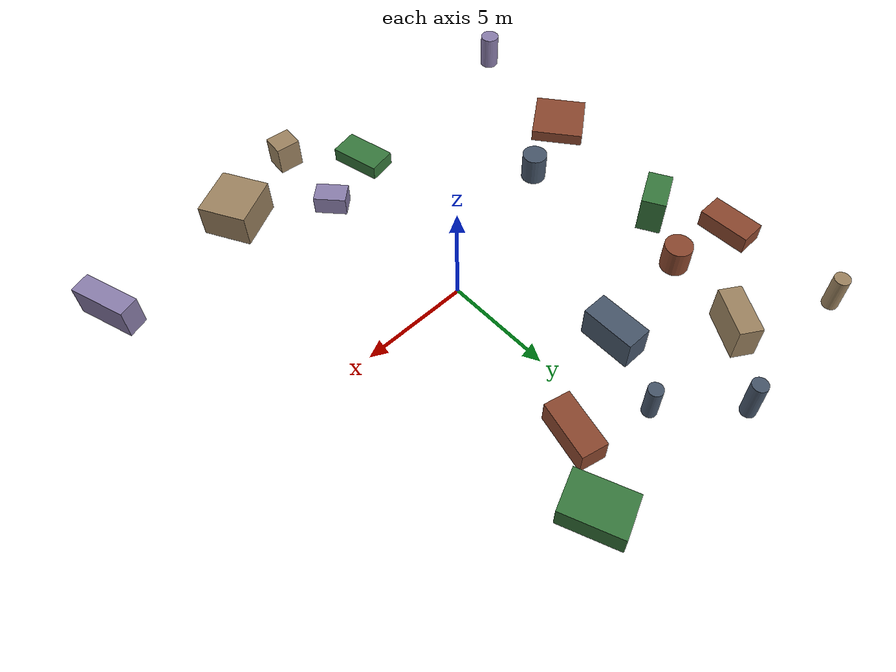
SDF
<sdf version="1.10">
 <world name="robotx_task1_uav_view">
  <gravity>0 0 -9.81</gravity>
  <physics name="physics" type="ode">
   <max_step_size>0.002</max_step_size>
   <real_time_factor>1.0</real_time_factor>
  </physics>
  <scene>
   <ambient>0.20 0.19 0.17 1.0</ambient>
   <background>0.45 0.48 0.42 1.0</background>
   <shadows>true</shadows>
   <grid>false</grid>
  </scene>
  <light name="sun" type="directional">
   <pose>0 0 300 0 0 0</pose>
   <diffuse>0.60 0.58 0.52 1.0</diffuse>
   <specular>0.30 0.35 0.28 1.0</specular>
   <direction>0.22 -0.10 -1.0</direction>
   <attenuation>
    <range>2500</range>
    <constant>0.85</constant>
    <linear>0.001</linear>
    <quadratic>0.00005</quadratic>
   </attenuation>
  </light>
  <plugin filename="gz-sim-physics-system" name="gz::sim::systems::Physics"/>
  <plugin filename="gz-sim-user-commands-system" name="gz::sim::systems::UserCommands"/>
  <plugin filename="gz-sim-scene-broadcaster-system" name="gz::sim::systems::SceneBroadcaster"/>
  <plugin filename="gz-sim-sensors-system" name="gz::sim::systems::Sensors">
   <render_engine>ogre2</render_engine>
  </plugin>
  <model name="scene_clutter_cyl_000">
   <static>true</static>
   <pose>-11.290 11.654 0.928 0 0 2.331213</pose>
   <link name="link">
    <visual name="v">
     <geometry><cylinder><radius>0.359</radius><length>1.755</length></cylinder></geometry>
     <material><ambient>0.45 0.38 0.32 1.0</ambient><diffuse>0.62 0.52 0.38 1.0</diffuse></material>
    </visual>
   </link>
  </model>
  <model name="scene_clutter_cyl_001">
   <static>true</static>
   <pose>-4.275 12.237 1.036 0 0 0.461255</pose>
   <link name="link">
    <visual name="v">
     <geometry><cylinder><radius>0.346</radius><length>1.972</length></cylinder></geometry>
     <material><ambient>0.18 0.22 0.28 1.0</ambient><diffuse>0.28 0.34 0.42 1.0</diffuse></material>
    </visual>
   </link>
  </model>
  <model name="scene_clutter_box_002">
   <static>true</static>
   <pose>-11.213 -4.239 0.319 0 0 -2.488521</pose>
   <link name="link">
    <visual name="v">
     <geometry><box><size>2.633 2.525 0.598</size></box></geometry>
     <material><ambient>0.35 0.16 0.12 1.0</ambient><diffuse>0.55 0.28 0.18 1.0</diffuse></material>
    </visual>
   </link>
  </model>
  <model name="scene_clutter_box_003">
   <static>true</static>
   <pose>-9.704 3.077 0.954 0 0 2.065538</pose>
   <link name="link">
    <visual name="v">
     <geometry><box><size>1.137 1.926 1.869</size></box></geometry>
     <material><ambient>0.12 0.30 0.14 1.0</ambient><diffuse>0.22 0.48 0.24 1.0</diffuse></material>
    </visual>
   </link>
  </model>
  <model name="scene_clutter_cyl_004">
   <static>true</static>
   <pose>-12.226 -10.413 0.939 0 0 1.759623</pose>
   <link name="link">
    <visual name="v">
     <geometry><cylinder><radius>0.465</radius><length>1.778</length></cylinder></geometry>
     <material><ambient>0.40 0.35 0.50 1.0</ambient><diffuse>0.55 0.50 0.68 1.0</diffuse></material>
    </visual>
   </link>
  </model>
  <model name="scene_clutter_box_005">
   <static>true</static>
   <pose>0.677 -11.770 0.756 0 0 -0.091554</pose>
   <link name="link">
    <visual name="v">
     <geometry><box><size>1.175 1.071 1.472</size></box></geometry>
     <material><ambient>0.45 0.38 0.32 1.0</ambient><diffuse>0.62 0.52 0.38 1.0</diffuse></material>
    </visual>
   </link>
  </model>
  <model name="scene_clutter_box_006">
   <static>true</static>
   <pose>-2.924 6.394 0.763 0 0 1.557753</pose>
   <link name="link">
    <visual name="v">
     <geometry><box><size>2.446 1.189 1.486</size></box></geometry>
     <material><ambient>0.18 0.22 0.28 1.0</ambient><diffuse>0.28 0.34 0.42 1.0</diffuse></material>
    </visual>
   </link>
  </model>
  <model name="scene_clutter_cyl_007">
   <static>true</static>
   <pose>-8.084 5.651 0.734 0 0 -2.111655</pose>
   <link name="link">
    <visual name="v">
     <geometry><cylinder><radius>0.645</radius><length>1.368</length></cylinder></geometry>
     <material><ambient>0.35 0.16 0.12 1.0</ambient><diffuse>0.55 0.28 0.18 1.0</diffuse></material>
    </visual>
   </link>
  </model>
  <model name="scene_clutter_box_008">
   <static>true</static>
   <pose>3.319 10.899 0.542 0 0 1.961635</pose>
   <link name="link">
    <visual name="v">
     <geometry><box><size>2.668 1.869 1.045</size></box></geometry>
     <material><ambient>0.12 0.30 0.14 1.0</ambient><diffuse>0.22 0.48 0.24 1.0</diffuse></material>
    </visual>
   </link>
  </model>
  <model name="scene_clutter_box_009">
   <static>true</static>
   <pose>0.831 -7.830 0.488 0 0 2.308104</pose>
   <link name="link">
    <visual name="v">
     <geometry><box><size>1.511 1.001 0.935</size></box></geometry>
     <material><ambient>0.40 0.35 0.50 1.0</ambient><diffuse>0.55 0.50 0.68 1.0</diffuse></material>
    </visual>
   </link>
  </model>
  <model name="scene_clutter_box_010">
   <static>true</static>
   <pose>-6.886 9.617 0.880 0 0 2.584769</pose>
   <link name="link">
    <visual name="v">
     <geometry><box><size>1.043 2.281 1.721</size></box></geometry>
     <material><ambient>0.45 0.38 0.32 1.0</ambient><diffuse>0.62 0.52 0.38 1.0</diffuse></material>
    </visual>
   </link>
  </model>
  <model name="scene_clutter_cyl_011">
   <static>true</static>
   <pose>-1.430 9.550 0.870 0 0 2.655631</pose>
   <link name="link">
    <visual name="v">
     <geometry><cylinder><radius>0.327</radius><length>1.640</length></cylinder></geometry>
     <material><ambient>0.18 0.22 0.28 1.0</ambient><diffuse>0.28 0.34 0.42 1.0</diffuse></material>
    </visual>
   </link>
  </model>
  <model name="scene_clutter_box_012">
   <static>true</static>
   <pose>-11.528 6.124 0.465 0 0 -3.131100</pose>
   <link name="link">
    <visual name="v">
     <geometry><box><size>1.253 2.435 0.891</size></box></geometry>
     <material><ambient>0.35 0.16 0.12 1.0</ambient><diffuse>0.55 0.28 0.18 1.0</diffuse></material>
    </visual>
   </link>
  </model>
  <model name="scene_clutter_box_013">
   <static>true</static>
   <pose>-2.142 -9.149 0.376 0 0 -1.351079</pose>
   <link name="link">
    <visual name="v">
     <geometry><box><size>2.450 1.354 0.712</size></box></geometry>
     <material><ambient>0.12 0.30 0.14 1.0</ambient><diffuse>0.22 0.48 0.24 1.0</diffuse></material>
    </visual>
   </link>
  </model>
  <model name="scene_clutter_box_014">
   <static>true</static>
   <pose>11.651 -9.210 0.787 0 0 1.890194</pose>
   <link name="link">
    <visual name="v">
     <geometry><box><size>2.738 0.936 1.534</size></box></geometry>
     <material><ambient>0.40 0.35 0.50 1.0</ambient><diffuse>0.55 0.50 0.68 1.0</diffuse></material>
    </visual>
   </link>
  </model>
  <model name="scene_clutter_box_015">
   <static>true</static>
   <pose>4.590 -10.129 0.843 0 0 -1.070925</pose>
   <link name="link">
    <visual name="v">
     <geometry><box><size>2.309 2.425 1.646</size></box></geometry>
     <material><ambient>0.45 0.38 0.32 1.0</ambient><diffuse>0.62 0.52 0.38 1.0</diffuse></material>
    </visual>
   </link>
  </model>
  <model name="scene_clutter_cyl_016">
   <static>true</static>
   <pose>-7.583 -2.608 0.769 0 0 -3.069983</pose>
   <link name="link">
    <visual name="v">
     <geometry><cylinder><radius>0.588</radius><length>1.438</length></cylinder></geometry>
     <material><ambient>0.18 0.22 0.28 1.0</ambient><diffuse>0.28 0.34 0.42 1.0</diffuse></material>
    </visual>
   </link>
  </model>
  <model name="scene_clutter_box_017">
   <static>true</static>
   <pose>1.624 8.248 0.572 0 0 2.903221</pose>
   <link name="link">
    <visual name="v">
     <geometry><box><size>1.189 2.592 1.104</size></box></geometry>
     <material><ambient>0.35 0.16 0.12 1.0</ambient><diffuse>0.55 0.28 0.18 1.0</diffuse></material>
    </visual>
   </link>
  </model>
  <model name="uav_dataset_camera">
   <static>false</static>
   <pose>0 0 26 0 0 0</pose>
   <plugin filename="librobotx_overhead_motion_plugin.dylib" name="robotx::OverheadMotionPlugin">
    <radius_x_m>10.85592</radius_x_m>
    <radius_y_m>8.72926</radius_y_m>
    <angular_speed_rad_s>0.079126</angular_speed_rad_s>
    <phase_rad>5.142923</phase_rad>
    <z_wobble_m>0.11751</z_wobble_m>
    <z_wobble_hz>0.05437</z_wobble_hz>
    <z_wobble_phase_rad>4.135588</z_wobble_phase_rad>
   </plugin>
   <link name="camera_link">
    <gravity>false</gravity>
    <sensor name="top_down_rgb" type="camera">
     <always_on>true</always_on>
     <update_rate>20</update_rate>
     <pose>0 0 0 0 1.57079632679 0</pose>
     <camera>
      <horizontal_fov>1.05</horizontal_fov>
      <image><width>1920</width><height>1080</height><format>R8G8B8</format></image>
      <clip><near>0.2</near><far>600</far></clip>
     </camera>
     <topic>/robotx/uav/camera/image_raw</topic>
     <visualize>true</visualize>
    </sensor>
   </link>
  </model>
 </world>
</sdf>
